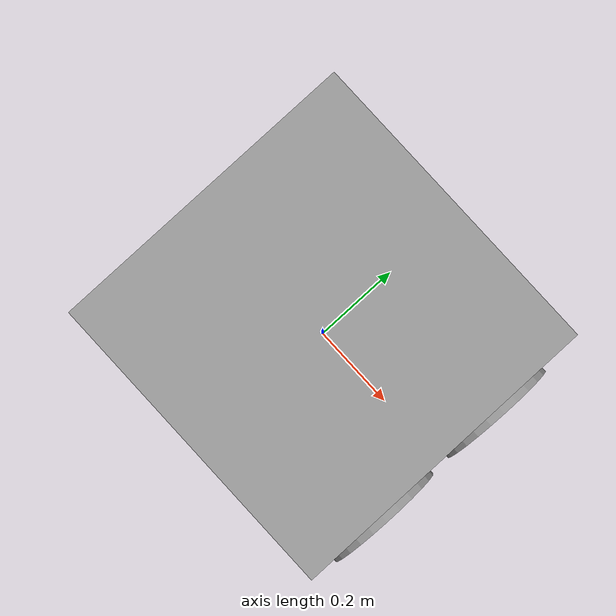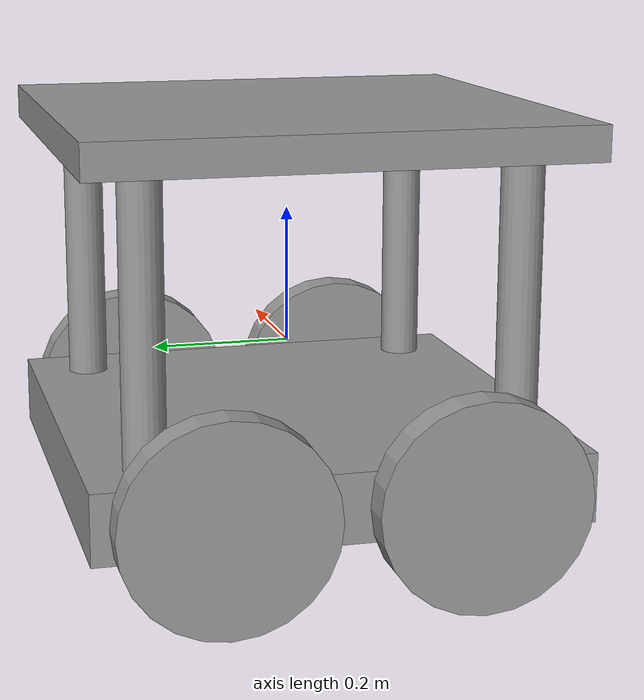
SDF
<?xml version='1.0'?>
<sdf version='1.6'>
  <model name='Robot'>
    <link name='link_0'>
      <pose frame=''>-0 0 -0.1475 0 -0 0</pose>
      <inertial>
        <mass>1</mass>
        <inertia>
          <ixx>0.166667</ixx>
          <ixy>0</ixy>
          <ixz>0</ixz>
          <iyy>0.166667</iyy>
          <iyz>0</iyz>
          <izz>0.166667</izz>
        </inertia>
        <pose frame=''>0 0 0 0 -0 0</pose>
      </inertial>
      <gravity>1</gravity>
      <self_collide>0</self_collide>
      <kinematic>0</kinematic>
      <visual name='visual'>
        <pose frame=''>0 0 0 0 -0 0</pose>
        <geometry>
          <box>
            <size>0.7 0.7 0.1</size>
          </box>
        </geometry>
        <material>
          <lighting>1</lighting>
          <script>
            <uri>file://media/materials/scripts/gazebo.material</uri>
            <name>Gazebo/Grey</name>
          </script>
          <shader type='pixel'>
            <normal_map>__default__</normal_map>
          </shader>
          <ambient>0.3 0.3 0.3 1</ambient>
          <diffuse>0.7 0.7 0.7 1</diffuse>
          <specular>0.01 0.01 0.01 1</specular>
          <emissive>0 0 0 1</emissive>
        </material>
        <transparency>0</transparency>
        <cast_shadows>1</cast_shadows>
      </visual>
      <collision name='collision'>
        <laser_retro>0</laser_retro>
        <max_contacts>10</max_contacts>
        <pose frame=''>0 0 0 0 -0 0</pose>
        <geometry>
          <box>
            <size>0.7 0.7 0.1</size>
          </box>
        </geometry>
        <surface>
          <friction>
            <ode>
              <mu>1</mu>
              <mu2>1</mu2>
              <fdir1>0 0 0</fdir1>
              <slip1>0</slip1>
              <slip2>0</slip2>
            </ode>
            <torsional>
              <coefficient>1</coefficient>
              <patch_radius>0</patch_radius>
              <surface_radius>0</surface_radius>
              <use_patch_radius>1</use_patch_radius>
              <ode>
                <slip>0</slip>
              </ode>
            </torsional>
          </friction>
          <bounce>
            <restitution_coefficient>0</restitution_coefficient>
            <threshold>1e+06</threshold>
          </bounce>
          <contact>
            <collide_without_contact>0</collide_without_contact>
            <collide_without_contact_bitmask>1</collide_without_contact_bitmask>
            <collide_bitmask>1</collide_bitmask>
            <ode>
              <soft_cfm>0</soft_cfm>
              <soft_erp>0.2</soft_erp>
              <kp>1e+13</kp>
              <kd>1</kd>
              <max_vel>0.01</max_vel>
              <min_depth>0</min_depth>
            </ode>
            <bullet>
              <split_impulse>1</split_impulse>
              <split_impulse_penetration_threshold>-0.01</split_impulse_penetration_threshold>
              <soft_cfm>0</soft_cfm>
              <soft_erp>0.2</soft_erp>
              <kp>1e+13</kp>
              <kd>1</kd>
            </bullet>
          </contact>
        </surface>
      </collision>
    </link>
    <link name='link_1'>
      <pose frame=''>0.375 0.175 -0.1475 1.5608 -0 1.5608</pose>
      <inertial>
        <mass>1</mass>
        <inertia>
          <ixx>0.145833</ixx>
          <ixy>0</ixy>
          <ixz>0</ixz>
          <iyy>0.145833</iyy>
          <iyz>0</iyz>
          <izz>0.125</izz>
        </inertia>
        <pose frame=''>0 0 0 0 -0 0</pose>
      </inertial>
      <gravity>1</gravity>
      <self_collide>0</self_collide>
      <kinematic>0</kinematic>
      <visual name='visual'>
        <pose frame=''>0 0 0 0 -0 0</pose>
        <geometry>
          <cylinder>
            <radius>0.15</radius>
            <length>0.05</length>
          </cylinder>
        </geometry>
        <material>
          <lighting>1</lighting>
          <script>
            <uri>file://media/materials/scripts/gazebo.material</uri>
            <name>Gazebo/Grey</name>
          </script>
          <shader type='pixel'>
            <normal_map>__default__</normal_map>
          </shader>
          <ambient>0.3 0.3 0.3 1</ambient>
          <diffuse>0.7 0.7 0.7 1</diffuse>
          <specular>0.01 0.01 0.01 1</specular>
          <emissive>0 0 0 1</emissive>
        </material>
        <transparency>0</transparency>
        <cast_shadows>1</cast_shadows>
      </visual>
      <collision name='collision'>
        <laser_retro>0</laser_retro>
        <max_contacts>10</max_contacts>
        <pose frame=''>0 0 0 0 -0 0</pose>
        <geometry>
          <cylinder>
            <radius>0.15</radius>
            <length>0.05</length>
          </cylinder>
        </geometry>
        <surface>
          <friction>
            <ode>
              <mu>1</mu>
              <mu2>1</mu2>
              <fdir1>0 0 0</fdir1>
              <slip1>0</slip1>
              <slip2>0</slip2>
            </ode>
            <torsional>
              <coefficient>1</coefficient>
              <patch_radius>0</patch_radius>
              <surface_radius>0</surface_radius>
              <use_patch_radius>1</use_patch_radius>
              <ode>
                <slip>0</slip>
              </ode>
            </torsional>
          </friction>
          <bounce>
            <restitution_coefficient>0</restitution_coefficient>
            <threshold>1e+06</threshold>
          </bounce>
          <contact>
            <collide_without_contact>0</collide_without_contact>
            <collide_without_contact_bitmask>1</collide_without_contact_bitmask>
            <collide_bitmask>1</collide_bitmask>
            <ode>
              <soft_cfm>0</soft_cfm>
              <soft_erp>0.2</soft_erp>
              <kp>1e+13</kp>
              <kd>1</kd>
              <max_vel>0.01</max_vel>
              <min_depth>0</min_depth>
            </ode>
            <bullet>
              <split_impulse>1</split_impulse>
              <split_impulse_penetration_threshold>-0.01</split_impulse_penetration_threshold>
              <soft_cfm>0</soft_cfm>
              <soft_erp>0.2</soft_erp>
              <kp>1e+13</kp>
              <kd>1</kd>
            </bullet>
          </contact>
        </surface>
      </collision>
    </link>
    <link name='link_1_clone'>
      <pose frame=''>0.375 -0.175 -0.1475 1.5608 -0 1.5608</pose>
      <inertial>
        <mass>1</mass>
        <inertia>
          <ixx>0.145833</ixx>
          <ixy>0</ixy>
          <ixz>0</ixz>
          <iyy>0.145833</iyy>
          <iyz>0</iyz>
          <izz>0.125</izz>
        </inertia>
        <pose frame=''>0 0 0 0 -0 0</pose>
      </inertial>
      <self_collide>0</self_collide>
      <kinematic>0</kinematic>
      <gravity>1</gravity>
      <visual name='visual'>
        <pose frame=''>0 0 0 0 -0 0</pose>
        <geometry>
          <cylinder>
            <radius>0.15</radius>
            <length>0.05</length>
          </cylinder>
        </geometry>
        <material>
          <lighting>1</lighting>
          <script>
            <uri>file://media/materials/scripts/gazebo.material</uri>
            <name>Gazebo/Grey</name>
          </script>
          <shader type='pixel'>
            <normal_map>__default__</normal_map>
          </shader>
          <ambient>0.3 0.3 0.3 1</ambient>
          <diffuse>0.7 0.7 0.7 1</diffuse>
          <specular>0.01 0.01 0.01 1</specular>
          <emissive>0 0 0 1</emissive>
        </material>
        <transparency>0</transparency>
        <cast_shadows>1</cast_shadows>
      </visual>
      <collision name='collision'>
        <laser_retro>0</laser_retro>
        <max_contacts>10</max_contacts>
        <pose frame=''>0 0 0 0 -0 0</pose>
        <geometry>
          <cylinder>
            <radius>0.15</radius>
            <length>0.05</length>
          </cylinder>
        </geometry>
        <surface>
          <friction>
            <ode>
              <mu>1</mu>
              <mu2>1</mu2>
              <fdir1>0 0 0</fdir1>
              <slip1>0</slip1>
              <slip2>0</slip2>
            </ode>
            <torsional>
              <coefficient>1</coefficient>
              <patch_radius>0</patch_radius>
              <surface_radius>0</surface_radius>
              <use_patch_radius>1</use_patch_radius>
              <ode>
                <slip>0</slip>
              </ode>
            </torsional>
          </friction>
          <bounce>
            <restitution_coefficient>0</restitution_coefficient>
            <threshold>1e+06</threshold>
          </bounce>
          <contact>
            <collide_without_contact>0</collide_without_contact>
            <collide_without_contact_bitmask>1</collide_without_contact_bitmask>
            <collide_bitmask>1</collide_bitmask>
            <ode>
              <soft_cfm>0</soft_cfm>
              <soft_erp>0.2</soft_erp>
              <kp>1e+13</kp>
              <kd>1</kd>
              <max_vel>0.01</max_vel>
              <min_depth>0</min_depth>
            </ode>
            <bullet>
              <split_impulse>1</split_impulse>
              <split_impulse_penetration_threshold>-0.01</split_impulse_penetration_threshold>
              <soft_cfm>0</soft_cfm>
              <soft_erp>0.2</soft_erp>
              <kp>1e+13</kp>
              <kd>1</kd>
            </bullet>
          </contact>
        </surface>
      </collision>
    </link>
    <link name='link_1_clone_clone'>
      <pose frame=''>-0.375 -0.175 -0.1475 1.5608 -0 1.5608</pose>
      <inertial>
        <mass>1</mass>
        <inertia>
          <ixx>0.145833</ixx>
          <ixy>0</ixy>
          <ixz>0</ixz>
          <iyy>0.145833</iyy>
          <iyz>0</iyz>
          <izz>0.125</izz>
        </inertia>
        <pose frame=''>0 0 0 0 -0 0</pose>
      </inertial>
      <self_collide>0</self_collide>
      <kinematic>0</kinematic>
      <gravity>1</gravity>
      <visual name='visual'>
        <pose frame=''>0 0 0 0 -0 0</pose>
        <geometry>
          <cylinder>
            <radius>0.15</radius>
            <length>0.05</length>
          </cylinder>
        </geometry>
        <material>
          <lighting>1</lighting>
          <script>
            <uri>file://media/materials/scripts/gazebo.material</uri>
            <name>Gazebo/Grey</name>
          </script>
          <shader type='pixel'>
            <normal_map>__default__</normal_map>
          </shader>
          <ambient>0.3 0.3 0.3 1</ambient>
          <diffuse>0.7 0.7 0.7 1</diffuse>
          <specular>0.01 0.01 0.01 1</specular>
          <emissive>0 0 0 1</emissive>
        </material>
        <transparency>0</transparency>
        <cast_shadows>1</cast_shadows>
      </visual>
      <collision name='collision'>
        <laser_retro>0</laser_retro>
        <max_contacts>10</max_contacts>
        <pose frame=''>0 0 0 0 -0 0</pose>
        <geometry>
          <cylinder>
            <radius>0.15</radius>
            <length>0.05</length>
          </cylinder>
        </geometry>
        <surface>
          <friction>
            <ode>
              <mu>1</mu>
              <mu2>1</mu2>
              <fdir1>0 0 0</fdir1>
              <slip1>0</slip1>
              <slip2>0</slip2>
            </ode>
            <torsional>
              <coefficient>1</coefficient>
              <patch_radius>0</patch_radius>
              <surface_radius>0</surface_radius>
              <use_patch_radius>1</use_patch_radius>
              <ode>
                <slip>0</slip>
              </ode>
            </torsional>
          </friction>
          <bounce>
            <restitution_coefficient>0</restitution_coefficient>
            <threshold>1e+06</threshold>
          </bounce>
          <contact>
            <collide_without_contact>0</collide_without_contact>
            <collide_without_contact_bitmask>1</collide_without_contact_bitmask>
            <collide_bitmask>1</collide_bitmask>
            <ode>
              <soft_cfm>0</soft_cfm>
              <soft_erp>0.2</soft_erp>
              <kp>1e+13</kp>
              <kd>1</kd>
              <max_vel>0.01</max_vel>
              <min_depth>0</min_depth>
            </ode>
            <bullet>
              <split_impulse>1</split_impulse>
              <split_impulse_penetration_threshold>-0.01</split_impulse_penetration_threshold>
              <soft_cfm>0</soft_cfm>
              <soft_erp>0.2</soft_erp>
              <kp>1e+13</kp>
              <kd>1</kd>
            </bullet>
          </contact>
        </surface>
      </collision>
    </link>
    <link name='link_1_clone_clone_0'>
      <pose frame=''>-0.375 0.175 -0.1475 1.5608 -0 1.5608</pose>
      <inertial>
        <mass>1</mass>
        <inertia>
          <ixx>0.145833</ixx>
          <ixy>0</ixy>
          <ixz>0</ixz>
          <iyy>0.145833</iyy>
          <iyz>0</iyz>
          <izz>0.125</izz>
        </inertia>
        <pose frame=''>0 0 0 0 -0 0</pose>
      </inertial>
      <self_collide>0</self_collide>
      <kinematic>0</kinematic>
      <visual name='visual'>
        <pose frame=''>0 0 0 0 -0 0</pose>
        <geometry>
          <cylinder>
            <radius>0.15</radius>
            <length>0.05</length>
          </cylinder>
        </geometry>
        <material>
          <lighting>1</lighting>
          <script>
            <uri>file://media/materials/scripts/gazebo.material</uri>
            <name>Gazebo/Grey</name>
          </script>
          <shader type='pixel'>
            <normal_map>__default__</normal_map>
          </shader>
          <ambient>0.3 0.3 0.3 1</ambient>
          <diffuse>0.7 0.7 0.7 1</diffuse>
          <specular>0.01 0.01 0.01 1</specular>
          <emissive>0 0 0 1</emissive>
        </material>
        <transparency>0</transparency>
        <cast_shadows>1</cast_shadows>
      </visual>
      <collision name='collision'>
        <laser_retro>0</laser_retro>
        <max_contacts>10</max_contacts>
        <pose frame=''>0 0 0 0 -0 0</pose>
        <geometry>
          <cylinder>
            <radius>0.15</radius>
            <length>0.05</length>
          </cylinder>
        </geometry>
        <surface>
          <friction>
            <ode>
              <mu>1</mu>
              <mu2>1</mu2>
              <fdir1>0 0 0</fdir1>
              <slip1>0</slip1>
              <slip2>0</slip2>
            </ode>
            <torsional>
              <coefficient>1</coefficient>
              <patch_radius>0</patch_radius>
              <surface_radius>0</surface_radius>
              <use_patch_radius>1</use_patch_radius>
              <ode>
                <slip>0</slip>
              </ode>
            </torsional>
          </friction>
          <bounce>
            <restitution_coefficient>0</restitution_coefficient>
            <threshold>1e+06</threshold>
          </bounce>
          <contact>
            <collide_without_contact>0</collide_without_contact>
            <collide_without_contact_bitmask>1</collide_without_contact_bitmask>
            <collide_bitmask>1</collide_bitmask>
            <ode>
              <soft_cfm>0</soft_cfm>
              <soft_erp>0.2</soft_erp>
              <kp>1e+13</kp>
              <kd>1</kd>
              <max_vel>0.01</max_vel>
              <min_depth>0</min_depth>
            </ode>
            <bullet>
              <split_impulse>1</split_impulse>
              <split_impulse_penetration_threshold>-0.01</split_impulse_penetration_threshold>
              <soft_cfm>0</soft_cfm>
              <soft_erp>0.2</soft_erp>
              <kp>1e+13</kp>
              <kd>1</kd>
            </bullet>
          </contact>
        </surface>
      </collision>
    </link>
    <link name='link_3'>
      <pose frame=''>0.2625 0.2625 0.1025 0 -0 0</pose>
      <inertial>
        <mass>1</mass>
        <inertia>
          <ixx>0.145833</ixx>
          <ixy>0</ixy>
          <ixz>0</ixz>
          <iyy>0.145833</iyy>
          <iyz>0</iyz>
          <izz>0.125</izz>
        </inertia>
        <pose frame=''>0 0 0 0 -0 0</pose>
      </inertial>
      <gravity>1</gravity>
      <self_collide>0</self_collide>
      <kinematic>0</kinematic>
      <visual name='visual'>
        <pose frame=''>0 0 0 0 -0 0</pose>
        <geometry>
          <cylinder>
            <radius>0.03</radius>
            <length>0.4</length>
          </cylinder>
        </geometry>
        <material>
          <lighting>1</lighting>
          <script>
            <uri>file://media/materials/scripts/gazebo.material</uri>
            <name>Gazebo/Grey</name>
          </script>
          <shader type='pixel'>
            <normal_map>__default__</normal_map>
          </shader>
          <ambient>0.3 0.3 0.3 1</ambient>
          <diffuse>0.7 0.7 0.7 1</diffuse>
          <specular>0.01 0.01 0.01 1</specular>
          <emissive>0 0 0 1</emissive>
        </material>
        <transparency>0</transparency>
        <cast_shadows>1</cast_shadows>
      </visual>
      <collision name='collision'>
        <laser_retro>0</laser_retro>
        <max_contacts>10</max_contacts>
        <pose frame=''>0 0 0 0 -0 0</pose>
        <geometry>
          <cylinder>
            <radius>0.03</radius>
            <length>0.4</length>
          </cylinder>
        </geometry>
        <surface>
          <friction>
            <ode>
              <mu>1</mu>
              <mu2>1</mu2>
              <fdir1>0 0 0</fdir1>
              <slip1>0</slip1>
              <slip2>0</slip2>
            </ode>
            <torsional>
              <coefficient>1</coefficient>
              <patch_radius>0</patch_radius>
              <surface_radius>0</surface_radius>
              <use_patch_radius>1</use_patch_radius>
              <ode>
                <slip>0</slip>
              </ode>
            </torsional>
          </friction>
          <bounce>
            <restitution_coefficient>0</restitution_coefficient>
            <threshold>1e+06</threshold>
          </bounce>
          <contact>
            <collide_without_contact>0</collide_without_contact>
            <collide_without_contact_bitmask>1</collide_without_contact_bitmask>
            <collide_bitmask>1</collide_bitmask>
            <ode>
              <soft_cfm>0</soft_cfm>
              <soft_erp>0.2</soft_erp>
              <kp>1e+13</kp>
              <kd>1</kd>
              <max_vel>0.01</max_vel>
              <min_depth>0</min_depth>
            </ode>
            <bullet>
              <split_impulse>1</split_impulse>
              <split_impulse_penetration_threshold>-0.01</split_impulse_penetration_threshold>
              <soft_cfm>0</soft_cfm>
              <soft_erp>0.2</soft_erp>
              <kp>1e+13</kp>
              <kd>1</kd>
            </bullet>
          </contact>
        </surface>
      </collision>
    </link>
    <link name='link_3_clone'>
      <pose frame=''>0.2625 -0.2625 0.1025 0 -0 0</pose>
      <inertial>
        <mass>1</mass>
        <inertia>
          <ixx>0.145833</ixx>
          <ixy>0</ixy>
          <ixz>0</ixz>
          <iyy>0.145833</iyy>
          <iyz>0</iyz>
          <izz>0.125</izz>
        </inertia>
        <pose frame=''>0 0 0 0 -0 0</pose>
      </inertial>
      <self_collide>0</self_collide>
      <kinematic>0</kinematic>
      <gravity>1</gravity>
      <visual name='visual'>
        <pose frame=''>0 0 0 0 -0 0</pose>
        <geometry>
          <cylinder>
            <radius>0.03</radius>
            <length>0.4</length>
          </cylinder>
        </geometry>
        <material>
          <lighting>1</lighting>
          <script>
            <uri>file://media/materials/scripts/gazebo.material</uri>
            <name>Gazebo/Grey</name>
          </script>
          <shader type='pixel'>
            <normal_map>__default__</normal_map>
          </shader>
          <ambient>0.3 0.3 0.3 1</ambient>
          <diffuse>0.7 0.7 0.7 1</diffuse>
          <specular>0.01 0.01 0.01 1</specular>
          <emissive>0 0 0 1</emissive>
        </material>
        <transparency>0</transparency>
        <cast_shadows>1</cast_shadows>
      </visual>
      <collision name='collision'>
        <laser_retro>0</laser_retro>
        <max_contacts>10</max_contacts>
        <pose frame=''>0 0 0 0 -0 0</pose>
        <geometry>
          <cylinder>
            <radius>0.03</radius>
            <length>0.4</length>
          </cylinder>
        </geometry>
        <surface>
          <friction>
            <ode>
              <mu>1</mu>
              <mu2>1</mu2>
              <fdir1>0 0 0</fdir1>
              <slip1>0</slip1>
              <slip2>0</slip2>
            </ode>
            <torsional>
              <coefficient>1</coefficient>
              <patch_radius>0</patch_radius>
              <surface_radius>0</surface_radius>
              <use_patch_radius>1</use_patch_radius>
              <ode>
                <slip>0</slip>
              </ode>
            </torsional>
          </friction>
          <bounce>
            <restitution_coefficient>0</restitution_coefficient>
            <threshold>1e+06</threshold>
          </bounce>
          <contact>
            <collide_without_contact>0</collide_without_contact>
            <collide_without_contact_bitmask>1</collide_without_contact_bitmask>
            <collide_bitmask>1</collide_bitmask>
            <ode>
              <soft_cfm>0</soft_cfm>
              <soft_erp>0.2</soft_erp>
              <kp>1e+13</kp>
              <kd>1</kd>
              <max_vel>0.01</max_vel>
              <min_depth>0</min_depth>
            </ode>
            <bullet>
              <split_impulse>1</split_impulse>
              <split_impulse_penetration_threshold>-0.01</split_impulse_penetration_threshold>
              <soft_cfm>0</soft_cfm>
              <soft_erp>0.2</soft_erp>
              <kp>1e+13</kp>
              <kd>1</kd>
            </bullet>
          </contact>
        </surface>
      </collision>
    </link>
    <link name='link_3_clone_0'>
      <pose frame=''>-0.2625 -0.2625 0.1025 0 -0 0</pose>
      <inertial>
        <mass>1</mass>
        <inertia>
          <ixx>0.145833</ixx>
          <ixy>0</ixy>
          <ixz>0</ixz>
          <iyy>0.145833</iyy>
          <iyz>0</iyz>
          <izz>0.125</izz>
        </inertia>
        <pose frame=''>0 0 0 0 -0 0</pose>
      </inertial>
      <self_collide>0</self_collide>
      <kinematic>0</kinematic>
      <visual name='visual'>
        <pose frame=''>0 0 0 0 -0 0</pose>
        <geometry>
          <cylinder>
            <radius>0.03</radius>
            <length>0.4</length>
          </cylinder>
        </geometry>
        <material>
          <lighting>1</lighting>
          <script>
            <uri>file://media/materials/scripts/gazebo.material</uri>
            <name>Gazebo/Grey</name>
          </script>
          <shader type='pixel'>
            <normal_map>__default__</normal_map>
          </shader>
          <ambient>0.3 0.3 0.3 1</ambient>
          <diffuse>0.7 0.7 0.7 1</diffuse>
          <specular>0.01 0.01 0.01 1</specular>
          <emissive>0 0 0 1</emissive>
        </material>
        <transparency>0</transparency>
        <cast_shadows>1</cast_shadows>
      </visual>
      <collision name='collision'>
        <laser_retro>0</laser_retro>
        <max_contacts>10</max_contacts>
        <pose frame=''>0 0 0 0 -0 0</pose>
        <geometry>
          <cylinder>
            <radius>0.03</radius>
            <length>0.4</length>
          </cylinder>
        </geometry>
        <surface>
          <friction>
            <ode>
              <mu>1</mu>
              <mu2>1</mu2>
              <fdir1>0 0 0</fdir1>
              <slip1>0</slip1>
              <slip2>0</slip2>
            </ode>
            <torsional>
              <coefficient>1</coefficient>
              <patch_radius>0</patch_radius>
              <surface_radius>0</surface_radius>
              <use_patch_radius>1</use_patch_radius>
              <ode>
                <slip>0</slip>
              </ode>
            </torsional>
          </friction>
          <bounce>
            <restitution_coefficient>0</restitution_coefficient>
            <threshold>1e+06</threshold>
          </bounce>
          <contact>
            <collide_without_contact>0</collide_without_contact>
            <collide_without_contact_bitmask>1</collide_without_contact_bitmask>
            <collide_bitmask>1</collide_bitmask>
            <ode>
              <soft_cfm>0</soft_cfm>
              <soft_erp>0.2</soft_erp>
              <kp>1e+13</kp>
              <kd>1</kd>
              <max_vel>0.01</max_vel>
              <min_depth>0</min_depth>
            </ode>
            <bullet>
              <split_impulse>1</split_impulse>
              <split_impulse_penetration_threshold>-0.01</split_impulse_penetration_threshold>
              <soft_cfm>0</soft_cfm>
              <soft_erp>0.2</soft_erp>
              <kp>1e+13</kp>
              <kd>1</kd>
            </bullet>
          </contact>
        </surface>
      </collision>
    </link>
    <link name='link_3_clone_1'>
      <pose frame=''>-0.2625 0.2625 0.1025 0 -0 0</pose>
      <inertial>
        <mass>1</mass>
        <inertia>
          <ixx>0.145833</ixx>
          <ixy>0</ixy>
          <ixz>0</ixz>
          <iyy>0.145833</iyy>
          <iyz>0</iyz>
          <izz>0.125</izz>
        </inertia>
        <pose frame=''>0 0 0 0 -0 0</pose>
      </inertial>
      <self_collide>0</self_collide>
      <kinematic>0</kinematic>
      <visual name='visual'>
        <pose frame=''>0 0 0 0 -0 0</pose>
        <geometry>
          <cylinder>
            <radius>0.03</radius>
            <length>0.4</length>
          </cylinder>
        </geometry>
        <material>
          <lighting>1</lighting>
          <script>
            <uri>file://media/materials/scripts/gazebo.material</uri>
            <name>Gazebo/Grey</name>
          </script>
          <shader type='pixel'>
            <normal_map>__default__</normal_map>
          </shader>
          <ambient>0.3 0.3 0.3 1</ambient>
          <diffuse>0.7 0.7 0.7 1</diffuse>
          <specular>0.01 0.01 0.01 1</specular>
          <emissive>0 0 0 1</emissive>
        </material>
        <transparency>0</transparency>
        <cast_shadows>1</cast_shadows>
      </visual>
      <collision name='collision'>
        <laser_retro>0</laser_retro>
        <max_contacts>10</max_contacts>
        <pose frame=''>0 0 0 0 -0 0</pose>
        <geometry>
          <cylinder>
            <radius>0.03</radius>
            <length>0.4</length>
          </cylinder>
        </geometry>
        <surface>
          <friction>
            <ode>
              <mu>1</mu>
              <mu2>1</mu2>
              <fdir1>0 0 0</fdir1>
              <slip1>0</slip1>
              <slip2>0</slip2>
            </ode>
            <torsional>
              <coefficient>1</coefficient>
              <patch_radius>0</patch_radius>
              <surface_radius>0</surface_radius>
              <use_patch_radius>1</use_patch_radius>
              <ode>
                <slip>0</slip>
              </ode>
            </torsional>
          </friction>
          <bounce>
            <restitution_coefficient>0</restitution_coefficient>
            <threshold>1e+06</threshold>
          </bounce>
          <contact>
            <collide_without_contact>0</collide_without_contact>
            <collide_without_contact_bitmask>1</collide_without_contact_bitmask>
            <collide_bitmask>1</collide_bitmask>
            <ode>
              <soft_cfm>0</soft_cfm>
              <soft_erp>0.2</soft_erp>
              <kp>1e+13</kp>
              <kd>1</kd>
              <max_vel>0.01</max_vel>
              <min_depth>0</min_depth>
            </ode>
            <bullet>
              <split_impulse>1</split_impulse>
              <split_impulse_penetration_threshold>-0.01</split_impulse_penetration_threshold>
              <soft_cfm>0</soft_cfm>
              <soft_erp>0.2</soft_erp>
              <kp>1e+13</kp>
              <kd>1</kd>
            </bullet>
          </contact>
        </surface>
      </collision>
    </link>
    <link name='link_4'>
      <pose frame=''>-0 0 0.3275 0 -0 0</pose>
      <inertial>
        <mass>1</mass>
        <inertia>
          <ixx>0.166667</ixx>
          <ixy>0</ixy>
          <ixz>0</ixz>
          <iyy>0.166667</iyy>
          <iyz>0</iyz>
          <izz>0.166667</izz>
        </inertia>
        <pose frame=''>0 0 0 0 -0 0</pose>
      </inertial>
      <gravity>1</gravity>
      <self_collide>0</self_collide>
      <kinematic>0</kinematic>
      <visual name='visual'>
        <pose frame=''>0 0 0 0 -0 0</pose>
        <geometry>
          <box>
            <size>0.7 0.7 0.05</size>
          </box>
        </geometry>
        <material>
          <lighting>1</lighting>
          <script>
            <uri>file://media/materials/scripts/gazebo.material</uri>
            <name>Gazebo/Grey</name>
          </script>
          <shader type='pixel'>
            <normal_map>__default__</normal_map>
          </shader>
          <ambient>0.3 0.3 0.3 1</ambient>
          <diffuse>0.7 0.7 0.7 1</diffuse>
          <specular>0.01 0.01 0.01 1</specular>
          <emissive>0 0 0 1</emissive>
        </material>
        <transparency>0</transparency>
        <cast_shadows>1</cast_shadows>
      </visual>
      <collision name='collision'>
        <laser_retro>0</laser_retro>
        <max_contacts>10</max_contacts>
        <pose frame=''>0 0 0 0 -0 0</pose>
        <geometry>
          <box>
            <size>0.7 0.7 0.05</size>
          </box>
        </geometry>
        <surface>
          <friction>
            <ode>
              <mu>1</mu>
              <mu2>1</mu2>
              <fdir1>0 0 0</fdir1>
              <slip1>0</slip1>
              <slip2>0</slip2>
            </ode>
            <torsional>
              <coefficient>1</coefficient>
              <patch_radius>0</patch_radius>
              <surface_radius>0</surface_radius>
              <use_patch_radius>1</use_patch_radius>
              <ode>
                <slip>0</slip>
              </ode>
            </torsional>
          </friction>
          <bounce>
            <restitution_coefficient>0</restitution_coefficient>
            <threshold>1e+06</threshold>
          </bounce>
          <contact>
            <collide_without_contact>0</collide_without_contact>
            <collide_without_contact_bitmask>1</collide_without_contact_bitmask>
            <collide_bitmask>1</collide_bitmask>
            <ode>
              <soft_cfm>0</soft_cfm>
              <soft_erp>0.2</soft_erp>
              <kp>1e+13</kp>
              <kd>1</kd>
              <max_vel>0.01</max_vel>
              <min_depth>0</min_depth>
            </ode>
            <bullet>
              <split_impulse>1</split_impulse>
              <split_impulse_penetration_threshold>-0.01</split_impulse_penetration_threshold>
              <soft_cfm>0</soft_cfm>
              <soft_erp>0.2</soft_erp>
              <kp>1e+13</kp>
              <kd>1</kd>
            </bullet>
          </contact>
        </surface>
      </collision>
    </link>
    <joint name='link_0_JOINT_0' type='revolute'>
      <parent>link_0</parent>
      <child>link_1_clone_clone_0</child>
      <pose frame=''>0 0 0 0 -0 0</pose>
      <axis>
        <xyz>0 0 1</xyz>
        <use_parent_model_frame>0</use_parent_model_frame>
        <limit>
          <lower>-1.79769e+308</lower>
          <upper>1.79769e+308</upper>
          <effort>-1</effort>
          <velocity>-1</velocity>
        </limit>
        <dynamics>
          <spring_reference>0</spring_reference>
          <spring_stiffness>0</spring_stiffness>
          <damping>0</damping>
          <friction>0</friction>
        </dynamics>
      </axis>
      <physics>
        <ode>
          <limit>
            <cfm>0</cfm>
            <erp>0.2</erp>
          </limit>
          <suspension>
            <cfm>0</cfm>
            <erp>0.2</erp>
          </suspension>
        </ode>
      </physics>
    </joint>
    <joint name='link_0_JOINT_2' type='revolute'>
      <parent>link_0</parent>
      <child>link_1_clone_clone</child>
      <pose frame=''>0 0 0 0 -0 0</pose>
      <axis>
        <xyz>0 0 1</xyz>
        <use_parent_model_frame>0</use_parent_model_frame>
        <limit>
          <lower>-1.79769e+308</lower>
          <upper>1.79769e+308</upper>
          <effort>-1</effort>
          <velocity>-1</velocity>
        </limit>
        <dynamics>
          <spring_reference>0</spring_reference>
          <spring_stiffness>0</spring_stiffness>
          <damping>0</damping>
          <friction>0</friction>
        </dynamics>
      </axis>
      <physics>
        <ode>
          <limit>
            <cfm>0</cfm>
            <erp>0.2</erp>
          </limit>
          <suspension>
            <cfm>0</cfm>
            <erp>0.2</erp>
          </suspension>
        </ode>
      </physics>
    </joint>
    <joint name='link_0_JOINT_3' type='revolute'>
      <parent>link_0</parent>
      <child>link_1</child>
      <pose frame=''>0 0 0 0 -0 0</pose>
      <axis>
        <xyz>1 0 0</xyz>
        <use_parent_model_frame>0</use_parent_model_frame>
        <limit>
          <lower>-1.79769e+308</lower>
          <upper>1.79769e+308</upper>
          <effort>-1</effort>
          <velocity>-1</velocity>
        </limit>
        <dynamics>
          <spring_reference>0</spring_reference>
          <spring_stiffness>0</spring_stiffness>
          <damping>0</damping>
        </dynamics>
      </axis>
      <physics>
        <ode>
          <limit>
            <cfm>0</cfm>
            <erp>0.2</erp>
          </limit>
          <suspension>
            <cfm>0</cfm>
            <erp>0.2</erp>
          </suspension>
        </ode>
      </physics>
    </joint>
    <joint name='link_0_JOINT_4' type='revolute'>
      <parent>link_0</parent>
      <child>link_1_clone</child>
      <pose frame=''>0 0 0 0 -0 0</pose>
      <axis>
        <xyz>0 0 1</xyz>
        <use_parent_model_frame>0</use_parent_model_frame>
        <limit>
          <lower>-1.79769e+308</lower>
          <upper>1.79769e+308</upper>
          <effort>-1</effort>
          <velocity>-1</velocity>
        </limit>
        <dynamics>
          <spring_reference>0</spring_reference>
          <spring_stiffness>0</spring_stiffness>
          <damping>0</damping>
          <friction>0</friction>
        </dynamics>
      </axis>
      <physics>
        <ode>
          <limit>
            <cfm>0</cfm>
            <erp>0.2</erp>
          </limit>
          <suspension>
            <cfm>0</cfm>
            <erp>0.2</erp>
          </suspension>
        </ode>
      </physics>
    </joint>
    <joint name='link_0_JOINT_5' type='fixed'>
      <parent>link_0</parent>
      <child>link_3</child>
      <pose frame=''>0 0 0 0 -0 0</pose>
      <physics>
        <ode>
          <limit>
            <cfm>0</cfm>
            <erp>0.2</erp>
          </limit>
          <suspension>
            <cfm>0</cfm>
            <erp>0.2</erp>
          </suspension>
        </ode>
      </physics>
    </joint>
    <joint name='link_0_JOINT_7' type='revolute'>
      <parent>link_0</parent>
      <child>link_3_clone</child>
      <pose frame=''>0 0 0 0 -0 0</pose>
      <axis>
        <xyz>1 0 0</xyz>
        <use_parent_model_frame>0</use_parent_model_frame>
        <limit>
          <lower>-1.79769e+308</lower>
          <upper>1.79769e+308</upper>
          <effort>-1</effort>
          <velocity>-1</velocity>
        </limit>
        <dynamics>
          <spring_reference>0</spring_reference>
          <spring_stiffness>0</spring_stiffness>
          <damping>0</damping>
        </dynamics>
      </axis>
      <physics>
        <ode>
          <limit>
            <cfm>0</cfm>
            <erp>0.2</erp>
          </limit>
          <suspension>
            <cfm>0</cfm>
            <erp>0.2</erp>
          </suspension>
        </ode>
      </physics>
    </joint>
    <joint name='link_0_JOINT_8' type='fixed'>
      <parent>link_0</parent>
      <child>link_3_clone_1</child>
      <pose frame=''>0 0 0 0 -0 0</pose>
      <physics>
        <ode>
          <limit>
            <cfm>0</cfm>
            <erp>0.2</erp>
          </limit>
          <suspension>
            <cfm>0</cfm>
            <erp>0.2</erp>
          </suspension>
        </ode>
      </physics>
    </joint>
    <joint name='link_0_JOINT_9' type='fixed'>
      <parent>link_0</parent>
      <child>link_3_clone_0</child>
      <pose frame=''>0 0 0 0 -0 0</pose>
      <physics>
        <ode>
          <limit>
            <cfm>0</cfm>
            <erp>0.2</erp>
          </limit>
          <suspension>
            <cfm>0</cfm>
            <erp>0.2</erp>
          </suspension>
        </ode>
      </physics>
    </joint>
    <joint name='link_4_JOINT_10' type='fixed'>
      <parent>link_4</parent>
      <child>link_3</child>
      <pose frame=''>0 0 0 -0.05 0 0</pose>
      <physics>
        <ode>
          <limit>
            <cfm>0</cfm>
            <erp>0.2</erp>
          </limit>
          <suspension>
            <cfm>0</cfm>
            <erp>0.2</erp>
          </suspension>
        </ode>
      </physics>
    </joint>
    <joint name='link_4_JOINT_11' type='fixed'>
      <parent>link_4</parent>
      <child>link_3_clone</child>
      <pose frame=''>0 0 0 -0.04 0 0</pose>
      <physics>
        <ode>
          <limit>
            <cfm>0</cfm>
            <erp>0.2</erp>
          </limit>
          <suspension>
            <cfm>0</cfm>
            <erp>0.2</erp>
          </suspension>
        </ode>
      </physics>
    </joint>
    <joint name='link_4_JOINT_12' type='fixed'>
      <parent>link_4</parent>
      <child>link_3_clone_0</child>
      <pose frame=''>0 0 0 0 0 -0.05</pose>
      <physics>
        <ode>
          <limit>
            <cfm>0</cfm>
            <erp>0.2</erp>
          </limit>
          <suspension>
            <cfm>0</cfm>
            <erp>0.2</erp>
          </suspension>
        </ode>
      </physics>
    </joint>
    <joint name='link_4_JOINT_13' type='fixed'>
      <parent>link_4</parent>
      <child>link_3_clone_1</child>
      <pose frame=''>0 0 0 0 -0 0</pose>
      <physics>
        <ode>
          <limit>
            <cfm>0</cfm>
            <erp>0.2</erp>
          </limit>
          <suspension>
            <cfm>0</cfm>
            <erp>0.2</erp>
          </suspension>
        </ode>
      </physics>
    </joint>
    <static>0</static>
    <allow_auto_disable>1</allow_auto_disable>
  </model>
</sdf>
